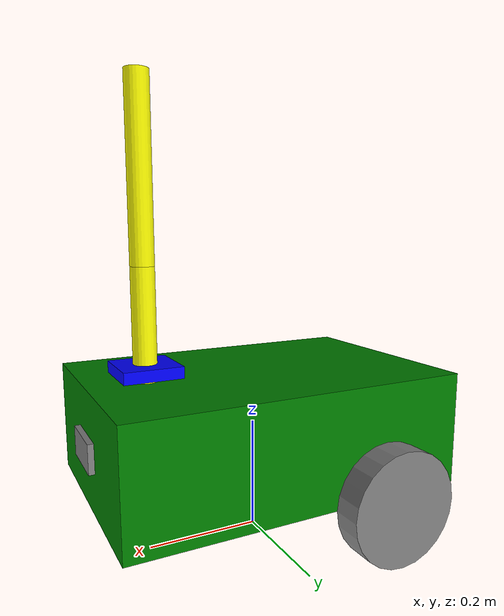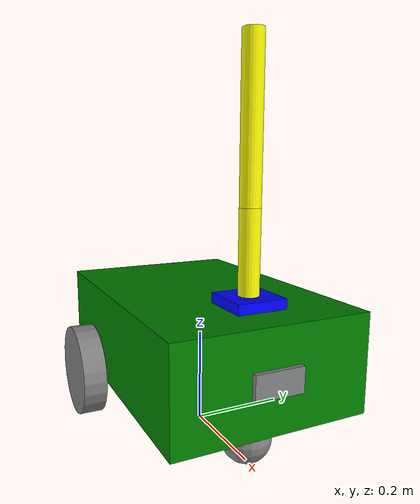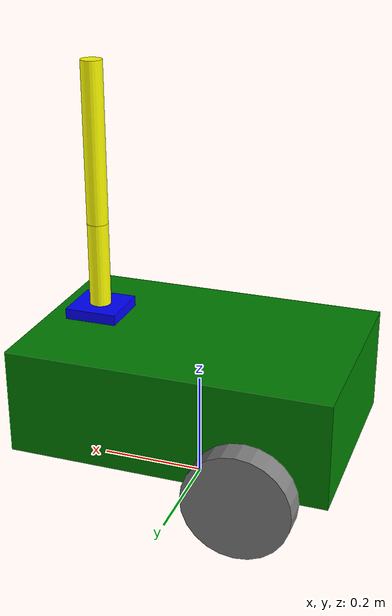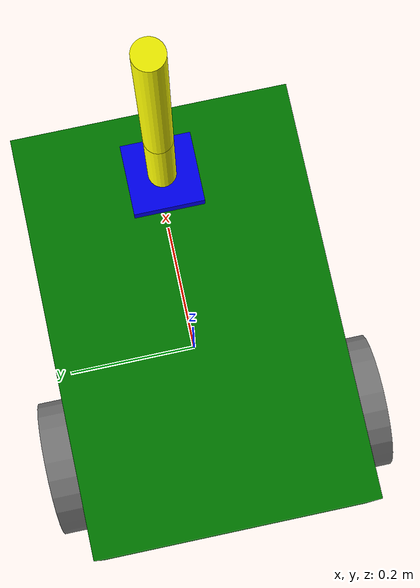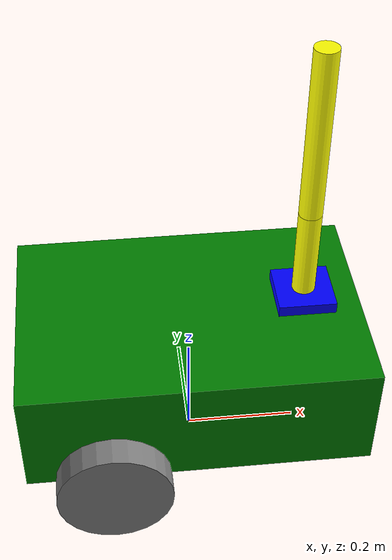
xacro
<?xml version="1.0"?>
<robot name="my_robot" xmlns:xacro="http://www.ros.org/wiki/xacro">
    <xacro:include filename="common_properties.xacro"/>
    <xacro:include filename="mobile_base.xacro"/>
    <xacro:include filename="mobile_base_gazebo.xacro" />
    <xacro:include filename="camera.xacro" />
    <xacro:include filename="arm.xacro" />
    <xacro:include filename="arm_gazebo.xacro" />

    <joint name="main_base_joint" type="fixed">
        <parent link="base_link"/>
        <child link="arm_base"/>
        <origin xyz="${base_length/3.0} 0 ${base_height + box_height}" rpy="0 0 0"/>
    </joint>
</robot>

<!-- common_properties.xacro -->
<robot xmlns:xacro="http://www.ros.org/wiki/xacro">
    <material name="green">
        <color rgba="0 0.5 0 1"/>
    </material>

    <material name="grey">
        <color rgba="0.5 0.5 0.5 1"/>
    </material>

    <material name="yellow">
        <color rgba="1 1 0 1"/>
    </material>

    <material name="blue">
        <color rgba="0 0 1 1"/>
    </material>

    <xacro:macro name="box_inertia" params="m x y z o_xyz o_rpy">
        <inertial>
            <mass value="${m}"/>
            <origin xyz="${o_xyz}" rpy="${o_rpy}"/>
            <inertia ixx="${m/12 * (y*y + z*z)}" ixy="0" ixz="0"
                     iyy="${m/12 * (x*x + z*z)}" iyz="0"
                     izz="${m/12 * (x*x + y*y)}"/>
        </inertial>
    </xacro:macro>

    <xacro:macro name="cylinder_inertia" params="m r l o_xyz o_rpy">
        <inertial>
            <mass value="${m}"/>
            <origin xyz="${o_xyz}" rpy="${o_rpy}"/>
            <inertia ixx="${m/12 * ((3*(r*r)) + l*l)}" ixy="0" ixz="0"
                     iyy="${m/12 * ((3*(r*r)) + l*l)}" iyz="0"
                     izz="${m/2 * (r*r)}"/>
        </inertial>
    </xacro:macro>

    <xacro:macro name="sphere_inertia" params="m r o_xyz o_rpy">
        <inertial>
            <mass value="${m}"/>
            <origin xyz="${o_xyz}" rpy="${o_rpy}"/>
            <inertia ixx="${2.0/5.0 *m * (r*r)}" ixy="0" ixz="0"
                     iyy="${2.0/5.0 *m * (r*r)}" iyz="0"
                     izz="${2.0/5.0 *m * (r*r)}"/>
        </inertial>
    </xacro:macro>
</robot>

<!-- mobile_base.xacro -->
<robot xmlns:xacro="http://www.ros.org/wiki/xacro">

    <xacro:property name="base_length" value="0.6" />
    <xacro:property name="base_width" value="0.4" />
    <xacro:property name="base_height" value="0.2" />
    <xacro:property name="wheel_radius" value="0.1" />
    <xacro:property name="wheel_length" value="0.05" />

    <link name="base_footprint"/>

    <link name="base_link">
        <visual>
            <geometry>
                <box size="${base_length} ${base_width} ${base_height}"/>
            </geometry>
            <origin xyz="0 0 ${base_height/2.0}" rpy="0 0 0"/>
            <material name="green"/>
        </visual>
        <collision>
            <geometry>
                <box size="${base_length} ${base_width} ${base_height}"/>
            </geometry>
            <origin xyz="0 0 ${base_height/2.0}" rpy="0 0 0"/>
        </collision>
        <xacro:box_inertia m="5.0" x="${base_length}" y="${base_width}" z="${base_height}"
                           o_xyz="0 0 ${base_height/2.0}"   o_rpy="0 0 0"/>
    </link>

    <xacro:macro name="wheel_link" params="prefix">
        <link name="${prefix}_wheel_link">
            <visual>
                <geometry>
                    <cylinder radius="${wheel_radius}" length="${wheel_length}"/>
                </geometry>
                <origin xyz="0 0 0" rpy="${pi / 2.0} 0 0" />
                <material name="grey"/>
            </visual>
            <collision>
                <geometry>
                    <sphere radius="${wheel_radius}"/>
                </geometry>
                <origin xyz="0 0 0" rpy="${pi / 2.0} 0 0" />
            </collision>
            <xacro:cylinder_inertia m="1.0" r="${wheel_radius}" l="${wheel_length}"
                                    o_xyz="0 0 0" o_rpy="${pi / 2.0} 0 0"/>
        </link>
    </xacro:macro>

    <xacro:wheel_link prefix="right"/>
    <xacro:wheel_link prefix="left"/>

    <link name="caster_wheel">
        <visual>
            <geometry>
                <sphere radius="${wheel_length}" />
            </geometry>
            <origin xyz="0 0 0" rpy="0 0 0"/>
            <material name="grey"/>
        </visual>
        <collision>
            <geometry>
                <sphere radius="${wheel_length}"/>
            </geometry>
            <origin xyz="0 0 0" rpy="0 0 0"/>
        </collision>
        <xacro:sphere_inertia m="0.5" r="${wheel_length}"
            o_xyz="0 0 0" o_rpy="0 0 0"/>
    </link>

    <joint name="base_joint" type="fixed">
        <parent link="base_footprint"/>
        <child link="base_link"/>
        <origin xyz="0 0 ${wheel_radius}" rpy="0 0 0"/>
    </joint>

    <joint name="base_right_wheel_joint" type="continuous">
        <parent link="base_link"/>
        <child link="right_wheel_link"/>
        <origin xyz="${-base_length/4.0} ${-(base_width/2.0 + wheel_length/2.0)} 0" rpy="0 0 0"/>
        <axis xyz="0 1 0"/>
    </joint>

    <joint name="base_left_wheel_joint" type="continuous">
        <parent link="base_link"/>
        <child link="left_wheel_link"/>
        <origin xyz="${-base_length/4.0} ${(base_width/2.0 + wheel_length/2.0)}  0" rpy="0 0 0"/>
        <axis xyz="0 1 0"/>
    </joint>

    <joint name="base_caster_wheel_joint" type="fixed">
        <parent link="base_link"/>
        <child link="caster_wheel"/>
        <origin xyz="${base_length/3.0} 0 ${-wheel_radius/2.0}" rpy="0 0 0"/>
        <axis xyz="0 1 0"/>
    </joint>
</robot>

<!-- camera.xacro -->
<robot xmlns:xacro="http://www.ros.org/wiki/xacro">

    <xacro:property name="camera_lenght" value="0.01" />
    <xacro:property name="camera_width" value="0.1" />
    <xacro:property name="camera_height" value="0.05" />

    <link name="camera_link">
        <visual>
            <geometry>
                <box size="${camera_lenght} ${camera_width} ${camera_height}"/>
            </geometry>
            <material name="grey"/>
        </visual>
        <collision>
            <geometry>
                <box size="${camera_lenght} ${camera_width} ${camera_height}"/>
            </geometry>
        </collision>
        <xacro:box_inertia m="0.1" x="${camera_lenght}" y="${camera_width}" z="${camera_height}"
            o_xyz="0 0 0" o_rpy="0 0 0"/>
    </link>

    <joint name="base_camera_joint" type="fixed">
        <parent link="base_link"/>
        <child link="camera_link"/>
        <origin xyz="${(base_length + camera_lenght)/2.0} 0 ${base_height/2.0}" rpy="0 0 0"/>
    </joint>

    <joint name="camera_optical_joint" type="fixed">
        <origin xyz="0 0 0" rpy="${-pi/2} 0 ${-pi/2}"/>
        <parent link="camera_link"/>
        <child link="camera_link_optical"/>
    </joint>

    <link name="camera_link_optical"/>

    <gazebo reference="camera_link">
        <sensor name="camera" type="camera">
            <camera>
                <horizontal_fov>1.3962634</horizontal_fov>
                <image>
                    <width>640</width>
                    <height>480</height>
                    <format>R8G8B8</format>
                </image>
                <clip>
                    <near>0.1</near>
                    <far>15</far>
                </clip>
                <noise>
                    <type>gaussian</type>
                    <mean>0.0</mean>
                    <stddev>0.007</stddev>
                </noise>
                <optical_frame_id>camera_link_optical</optical_frame_id>
                <camera_info_topic>camera/camera_info</camera_info_topic>
            </camera>
            <always_on>1</always_on>
            <update_rate>20</update_rate>
            <visualize>true</visualize>
            <topic>camera/image_raw</topic>
        </sensor>
    </gazebo>
</robot>

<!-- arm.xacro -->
<robot xmlns:xacro="http://www.ros.org/wiki/xacro">
    <xacro:property name="box_sides" value="0.1" />
    <xacro:property name="box_height" value="0.02" />
    <xacro:property name="cylinder_radius" value="0.02" />
    <xacro:property name="cylinder_length" value="0.3" />

    <link name="arm_base">
        <visual>
            <geometry>
                <box size= "${box_sides} ${box_sides} ${box_height}"/>
            </geometry>
            <material name="blue"/>
        </visual>

        <collision>
            <geometry>
                <box size= "${box_sides} ${box_sides} ${box_height}"/>
            </geometry>
        </collision>

        <xacro:box_inertia m="0.5" x="${box_sides}" y="${box_sides}" z="${box_height}"
            o_xyz="0 0 0" o_rpy="0 0 0"/>
    </link>

    <xacro:macro name="cylinder" params="prefix r l">
        <link name="${prefix}_link">
            <visual>
                <geometry>
                    <cylinder radius="${r}" length="${l}"/>
                </geometry>
                <material name="yellow"/>
            </visual>
            <collision>
                <geometry>
                    <cylinder radius="${r}" length="${l/3.0}"/>
                </geometry>
            </collision>
            <xacro:cylinder_inertia m="0.3" r="${cylinder_radius}" l="${cylinder_length/3.0}"
                o_xyz="0 0 ${cylinder_length}" o_rpy="0 0 0"/>
        </link>
    </xacro:macro>

    <xacro:cylinder prefix="forearm" r="${cylinder_radius}" l="${cylinder_length}" />
    <xacro:cylinder prefix="hand" r="${cylinder_radius}" l="${cylinder_length}" />

    <joint name="forearm_base_joint" type="revolute">
        <parent link="arm_base"/>
        <child link="forearm_link"/>
        <origin xyz="0 0 ${box_height}" rpy="0 0 0"/>
        <axis xyz="0 1 0" />
        <limit lower="0" upper="${pi/2}" effort="100" velocity="100" />
        <dynamics friction="0.3" damping="0.3" />
    </joint>

    <joint name="forearm_hand_joint" type="revolute">
        <parent link="forearm_link"/>
        <child link="hand_link"/>
        <origin xyz="0 0 ${cylinder_length}" rpy="0 0 0"/>
        <axis xyz="0 1 0" />
        <limit lower="0" upper="${pi/2}" effort="100" velocity="100" />
        <dynamics friction="0.3" damping="0.3" />
    </joint>

</robot>
